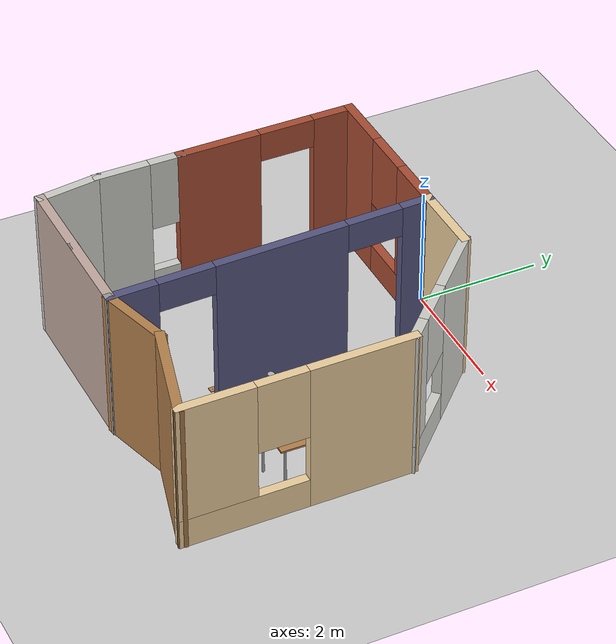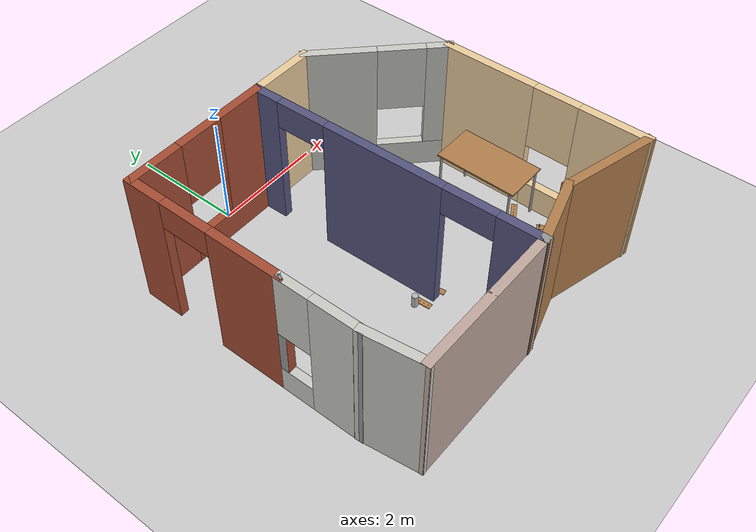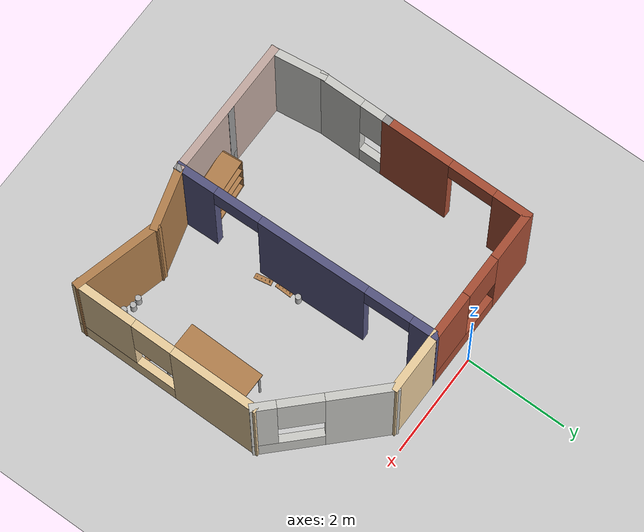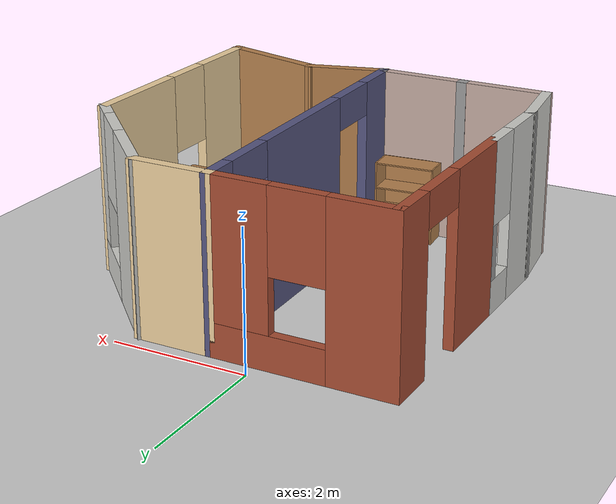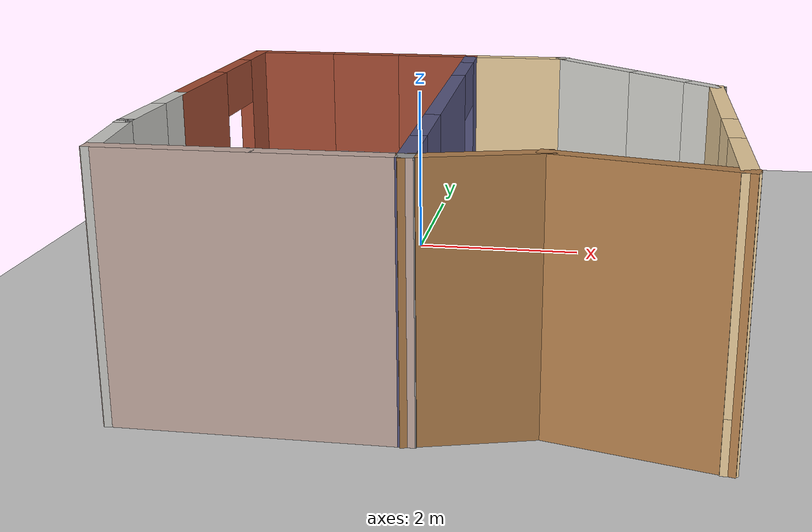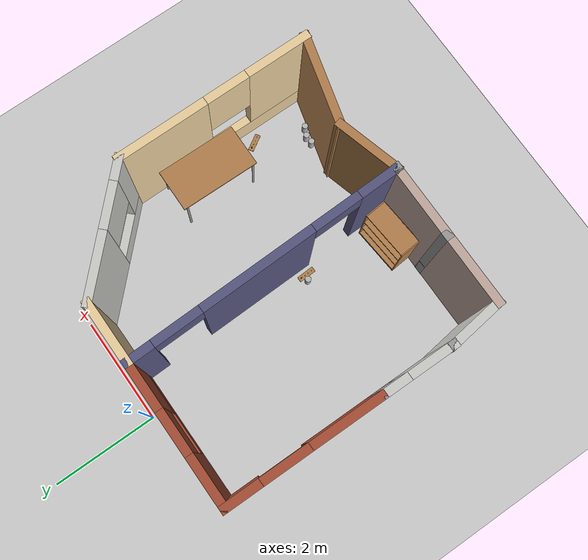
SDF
<sdf version="1.6">
 <world name="default">
  <model name="ground_plane">
   <static>1</static>
   <link name="link">
    <collision name="collision">
     <geometry><plane><normal>0 0 1</normal><size>100 100</size></plane></geometry>
     <surface><friction><ode><mu>100</mu><mu2>50</mu2></ode></friction></surface>
    </collision>
    <visual name="visual">
     <cast_shadows>0</cast_shadows>
     <geometry><plane><normal>0 0 1</normal><size>100 100</size></plane></geometry>
     <material>
      <script><uri>file://media/materials/scripts/gazebo.material</uri><name>Gazebo/Grey</name></script>
     </material>
    </visual>
   </link>
  </model>
  <model name="OfficeMini">
   <pose>0.76074 -2.91797 0 0 -0 0</pose>
   <link name="Wall_0">
    <pose>-2.69182 -0.901255 0 0 -0 1.5708</pose>
    <visual name="Wall_0_Visual_0">
     <pose>-0.298988 0 1.25 0 -0 0</pose>
     <geometry><box><size>0.902024 0.15 2.5</size></box></geometry>
     <material>
      <script><uri>file://media/materials/scripts/gazebo.material</uri><name>Gazebo/CeilingTiled</name></script>
      <ambient>1 1 1 1</ambient>
     </material>
     <meta><layer>0</layer></meta>
    </visual>
    <collision name="Wall_0_Collision_0">
     <geometry><box><size>0.902024 0.15 2.5</size></box></geometry>
     <pose>-0.298988 0 1.25 0 -0 0</pose>
    </collision>
    <visual name="Wall_0_Visual_1">
     <pose>0.451012 0 0.25 0 -0 0</pose>
     <geometry><box><size>0.597976 0.15 0.5</size></box></geometry>
     <material>
      <script><uri>file://media/materials/scripts/gazebo.material</uri><name>Gazebo/CeilingTiled</name></script>
      <ambient>1 1 1 1</ambient>
     </material>
     <meta><layer>0</layer></meta>
    </visual>
    <collision name="Wall_0_Collision_1">
     <geometry><box><size>0.597976 0.15 0.5</size></box></geometry>
     <pose>0.451012 0 0.25 0 -0 0</pose>
    </collision>
    <visual name="Wall_0_Visual_2">
     <pose>0.451012 0 1.9 0 -0 0</pose>
     <geometry><box><size>0.597976 0.15 1.2</size></box></geometry>
     <material>
      <script><uri>file://media/materials/scripts/gazebo.material</uri><name>Gazebo/CeilingTiled</name></script>
      <ambient>1 1 1 1</ambient>
     </material>
     <meta><layer>0</layer></meta>
    </visual>
    <collision name="Wall_0_Collision_2">
     <geometry><box><size>0.597976 0.15 1.2</size></box></geometry>
     <pose>0.451012 0 1.9 0 -0 0</pose>
    </collision>
   </link>
   <link name="Wall_1">
    <collision name="Wall_1_Collision">
     <geometry><box><size>0.15 0.15 2.5</size></box></geometry>
     <pose>0 0 1.25 0 -0 0</pose>
    </collision>
    <visual name="Wall_1_Visual">
     <pose>0 0 1.25 0 -0 0</pose>
     <geometry><box><size>0.15 0.15 2.5</size></box></geometry>
     <material>
      <script><uri>file://media/materials/scripts/gazebo.material</uri><name>Gazebo/Grey</name></script>
      <ambient>1 1 1 1</ambient>
     </material>
     <meta><layer>0</layer></meta>
    </visual>
    <pose>-2.69182 -0.226255 0 0 -0 0</pose>
   </link>
   <link name="Wall_10">
    <collision name="Wall_10_Collision">
     <geometry><box><size>2.75 0.15 2.5</size></box></geometry>
     <pose>0 0 1.25 0 -0 0</pose>
    </collision>
    <visual name="Wall_10_Visual">
     <pose>0 0 1.25 0 -0 0</pose>
     <geometry><box><size>2.75 0.15 2.5</size></box></geometry>
     <material>
      <script><uri>file://media/materials/scripts/gazebo.material</uri><name>Gazebo/Grey</name></script>
      <ambient>0.760784 0.662745 0.627451 1</ambient>
     </material>
     <meta><layer>0</layer></meta>
    </visual>
    <pose>-1.26682 -2.52911 0 0 -0 3.14159</pose>
   </link>
   <link name="Wall_11">
    <collision name="Wall_11_Collision">
     <geometry><box><size>1.11102 0.15 2.5</size></box></geometry>
     <pose>0 0 1.25 0 -0 0</pose>
    </collision>
    <visual name="Wall_11_Visual">
     <pose>0 0 1.25 0 -0 0</pose>
     <geometry><box><size>1.11102 0.15 2.5</size></box></geometry>
     <material>
      <script><uri>file://media/materials/scripts/gazebo.material</uri><name>Gazebo/CeilingTiled</name></script>
      <ambient>1 1 1 1</ambient>
     </material>
     <meta><layer>0</layer></meta>
    </visual>
    <pose>-2.62932 -2.05268 0 0 -0 1.70124</pose>
   </link>
   <link name="Wall_12">
    <collision name="Wall_12_Collision">
     <geometry><box><size>0.15 0.15 2.5</size></box></geometry>
     <pose>0 0 1.25 0 -0 0</pose>
    </collision>
    <visual name="Wall_12_Visual">
     <pose>0 0 1.25 0 -0 0</pose>
     <geometry><box><size>0.15 0.15 2.5</size></box></geometry>
     <material>
      <script><uri>file://media/materials/scripts/gazebo.material</uri><name>Gazebo/Grey</name></script>
      <ambient>1 1 1 1</ambient>
     </material>
     <meta><layer>0</layer></meta>
    </visual>
    <pose>-2.69182 -1.57625 0 0 -0 0</pose>
   </link>
   <link name="Wall_16">
    <collision name="Wall_16_Collision">
     <geometry><box><size>0.16 0.15 2.5</size></box></geometry>
     <pose>0 0 1.25 0 -0 0</pose>
    </collision>
    <visual name="Wall_16_Visual">
     <pose>0 0 1.25 0 -0 0</pose>
     <geometry><box><size>0.16 0.15 2.5</size></box></geometry>
     <material>
      <script><uri>file://media/materials/scripts/gazebo.material</uri><name>Gazebo/Grey</name></script>
      <ambient>1 1 1 1</ambient>
     </material>
     <meta><layer>0</layer></meta>
    </visual>
    <pose>-1.28106 -2.52548 0 0 -0 0</pose>
   </link>
   <link name="Wall_17">
    <pose>-1.28106 -2.52548 0 0 -0 3.14159</pose>
    <visual name="Wall_17_Visual_0">
     <pose>0 0 0.25 0 -0 0</pose>
     <geometry><box><size>0.16 0.15 0.5</size></box></geometry>
     <material>
      <script><uri>file://media/materials/scripts/gazebo.material</uri><name>Gazebo/Grey</name></script>
      <ambient>1 1 1 1</ambient>
     </material>
     <meta><layer>0</layer></meta>
    </visual>
    <collision name="Wall_17_Collision_0">
     <geometry><box><size>0.16 0.15 0.5</size></box></geometry>
     <pose>0 0 0.25 0 -0 0</pose>
    </collision>
   </link>
   <link name="Wall_19">
    <collision name="Wall_19_Collision">
     <geometry><box><size>1.25 0.15 2.5</size></box></geometry>
     <pose>0 0 1.25 0 -0 0</pose>
    </collision>
    <visual name="Wall_19_Visual">
     <pose>0 0 1.25 0 -0 0</pose>
     <geometry><box><size>1.25 0.15 2.5</size></box></geometry>
     <material>
      <script><uri>file://media/materials/scripts/gazebo.material</uri><name>Gazebo/Grey</name></script>
      <ambient>0.921569 0.807843 0.615686 1</ambient>
     </material>
     <meta><layer>0</layer></meta>
    </visual>
    <pose>0.458176 2.62374 0 0 -0 0</pose>
   </link>
   <link name="Wall_20">
    <pose>1.83903 1.79289 0 0 0 -0.785398</pose>
    <visual name="Wall_20_Visual_0">
     <pose>-0.62706 0 1.25 0 -0 0</pose>
     <geometry><box><size>1.24588 0.15 2.5</size></box></geometry>
     <material>
      <script><uri>file://media/materials/scripts/gazebo.material</uri><name>Gazebo/CeilingTiled</name></script>
      <ambient>0.921569 0.807843 0.615686 1</ambient>
     </material>
     <meta><layer>0</layer></meta>
    </visual>
    <collision name="Wall_20_Collision_0">
     <geometry><box><size>1.24588 0.15 2.5</size></box></geometry>
     <pose>-0.62706 0 1.25 0 -0 0</pose>
    </collision>
    <visual name="Wall_20_Visual_1">
     <pose>0.62294 0 0.25 0 -0 0</pose>
     <geometry><box><size>1.25412 0.15 0.5</size></box></geometry>
     <material>
      <script><uri>file://media/materials/scripts/gazebo.material</uri><name>Gazebo/CeilingTiled</name></script>
      <ambient>0.921569 0.807843 0.615686 1</ambient>
     </material>
     <meta><layer>0</layer></meta>
    </visual>
    <collision name="Wall_20_Collision_1">
     <geometry><box><size>1.25412 0.15 0.5</size></box></geometry>
     <pose>0.62294 0 0.25 0 -0 0</pose>
    </collision>
    <visual name="Wall_20_Visual_2">
     <pose>1.02294 0 1.5 0 -0 0</pose>
     <geometry><box><size>0.454121 0.15 2</size></box></geometry>
     <material>
      <script><uri>file://media/materials/scripts/gazebo.material</uri><name>Gazebo/CeilingTiled</name></script>
      <ambient>0.921569 0.807843 0.615686 1</ambient>
     </material>
     <meta><layer>0</layer></meta>
    </visual>
    <collision name="Wall_20_Collision_2">
     <geometry><box><size>0.454121 0.15 2</size></box></geometry>
     <pose>1.02294 0 1.5 0 -0 0</pose>
    </collision>
    <visual name="Wall_20_Visual_3">
     <pose>0.395879 0 1.9 0 -0 0</pose>
     <geometry><box><size>0.8 0.15 1.2</size></box></geometry>
     <material>
      <script><uri>file://media/materials/scripts/gazebo.material</uri><name>Gazebo/CeilingTiled</name></script>
      <ambient>0.921569 0.807843 0.615686 1</ambient>
     </material>
     <meta><layer>0</layer></meta>
    </visual>
    <collision name="Wall_20_Collision_3">
     <geometry><box><size>0.8 0.15 1.2</size></box></geometry>
     <pose>0.395879 0 1.9 0 -0 0</pose>
    </collision>
   </link>
   <link name="Wall_21">
    <pose>2.66988 -0.837956 0 0 0 -1.5708</pose>
    <visual name="Wall_21_Visual_0">
     <pose>-1.01177 0 1.25 0 -0 0</pose>
     <geometry><box><size>1.72645 0.15 2.5</size></box></geometry>
     <material>
      <script><uri>file://media/materials/scripts/gazebo.material</uri><name>Gazebo/Grey</name></script>
      <ambient>0.921569 0.807843 0.615686 1</ambient>
     </material>
     <meta><layer>0</layer></meta>
    </visual>
    <collision name="Wall_21_Collision_0">
     <geometry><box><size>1.72645 0.15 2.5</size></box></geometry>
     <pose>-1.01177 0 1.25 0 -0 0</pose>
    </collision>
    <visual name="Wall_21_Visual_1">
     <pose>0.863227 0 0.25 0 -0 0</pose>
     <geometry><box><size>2.02355 0.15 0.5</size></box></geometry>
     <material>
      <script><uri>file://media/materials/scripts/gazebo.material</uri><name>Gazebo/Grey</name></script>
      <ambient>0.921569 0.807843 0.615686 1</ambient>
     </material>
     <meta><layer>0</layer></meta>
    </visual>
    <collision name="Wall_21_Collision_1">
     <geometry><box><size>2.02355 0.15 0.5</size></box></geometry>
     <pose>0.863227 0 0.25 0 -0 0</pose>
    </collision>
    <visual name="Wall_21_Visual_2">
     <pose>1.26323 0 1.5 0 -0 0</pose>
     <geometry><box><size>1.22355 0.15 2</size></box></geometry>
     <material>
      <script><uri>file://media/materials/scripts/gazebo.material</uri><name>Gazebo/Grey</name></script>
      <ambient>0.921569 0.807843 0.615686 1</ambient>
     </material>
     <meta><layer>0</layer></meta>
    </visual>
    <collision name="Wall_21_Collision_2">
     <geometry><box><size>1.22355 0.15 2</size></box></geometry>
     <pose>1.26323 0 1.5 0 -0 0</pose>
    </collision>
    <visual name="Wall_21_Visual_3">
     <pose>0.251454 0 1.9 0 -0 0</pose>
     <geometry><box><size>0.8 0.15 1.2</size></box></geometry>
     <material>
      <script><uri>file://media/materials/scripts/gazebo.material</uri><name>Gazebo/Grey</name></script>
      <ambient>0.921569 0.807843 0.615686 1</ambient>
     </material>
     <meta><layer>0</layer></meta>
    </visual>
    <collision name="Wall_21_Collision_3">
     <geometry><box><size>0.8 0.15 1.2</size></box></geometry>
     <pose>0.251454 0 1.9 0 -0 0</pose>
    </collision>
   </link>
   <link name="Wall_22">
    <collision name="Wall_22_Collision">
     <geometry><box><size>1.75 0.15 2.5</size></box></geometry>
     <pose>0 0 1.25 0 -0 0</pose>
    </collision>
    <visual name="Wall_22_Visual">
     <pose>0 0 1.25 0 -0 0</pose>
     <geometry><box><size>1.75 0.15 2.5</size></box></geometry>
     <material>
      <script><uri>file://media/materials/scripts/gazebo.material</uri><name>Gazebo/Wood</name></script>
      <ambient>1 1 1 1</ambient>
     </material>
     <meta><layer>0</layer></meta>
    </visual>
    <pose>1.89714 -2.4309 0 0 -0 2.87979</pose>
   </link>
   <link name="Wall_23">
    <collision name="Wall_23_Collision">
     <geometry><box><size>1.28311 0.15 2.5</size></box></geometry>
     <pose>0 0 1.25 0 -0 0</pose>
    </collision>
    <visual name="Wall_23_Visual">
     <pose>0 0 1.25 0 -0 0</pose>
     <geometry><box><size>1.28311 0.15 2.5</size></box></geometry>
     <material>
      <script><uri>file://media/materials/scripts/gazebo.material</uri><name>Gazebo/Wood</name></script>
      <ambient>1 1 1 1</ambient>
     </material>
     <meta><layer>0</layer></meta>
    </visual>
    <pose>0.578785 -2.37648 0 0 0 -2.86882</pose>
   </link>
   <link name="Wall_24">
    <collision name="Wall_24_Collision">
     <geometry><box><size>0.15 0.15 2.5</size></box></geometry>
     <pose>0 0 1.25 0 -0 0</pose>
    </collision>
    <visual name="Wall_24_Visual">
     <pose>0 0 1.25 0 -0 0</pose>
     <geometry><box><size>0.15 0.15 2.5</size></box></geometry>
     <material>
      <script><uri>file://media/materials/scripts/gazebo.material</uri><name>Gazebo/Grey</name></script>
      <ambient>1 1 1 1</ambient>
     </material>
     <meta><layer>0</layer></meta>
    </visual>
    <pose>0.033176 -2.52911 0 0 -0 0</pose>
   </link>
   <link name="Wall_26">
    <pose>-0.029324 0.04732 0 0 0 -1.54654</pose>
    <visual name="Wall_26_Visual_0">
     <pose>-2.37982 0 1.25 0 -0 0</pose>
     <geometry><box><size>0.544731 0.15 2.5</size></box></geometry>
     <material>
      <script><uri>file://media/materials/scripts/gazebo.material</uri><name>Gazebo/Grey</name></script>
      <ambient>0.333333 0.333333 0.498039 1</ambient>
     </material>
     <meta><layer>0</layer></meta>
    </visual>
    <collision name="Wall_26_Collision_0">
     <geometry><box><size>0.544731 0.15 2.5</size></box></geometry>
     <pose>-2.37982 0 1.25 0 -0 0</pose>
    </collision>
    <visual name="Wall_26_Visual_1">
     <pose>-0.133525 0 1.25 0 -0 0</pose>
     <geometry><box><size>2.14785 0.15 2.5</size></box></geometry>
     <material>
      <script><uri>file://media/materials/scripts/gazebo.material</uri><name>Gazebo/Grey</name></script>
      <ambient>0.333333 0.333333 0.498039 1</ambient>
     </material>
     <meta><layer>0</layer></meta>
    </visual>
    <collision name="Wall_26_Collision_1">
     <geometry><box><size>2.14785 0.15 2.5</size></box></geometry>
     <pose>-0.133525 0 1.25 0 -0 0</pose>
    </collision>
    <visual name="Wall_26_Visual_2">
     <pose>2.24629 0 1.25 0 -0 0</pose>
     <geometry><box><size>0.811781 0.15 2.5</size></box></geometry>
     <material>
      <script><uri>file://media/materials/scripts/gazebo.material</uri><name>Gazebo/Grey</name></script>
      <ambient>0.333333 0.333333 0.498039 1</ambient>
     </material>
     <meta><layer>0</layer></meta>
    </visual>
    <collision name="Wall_26_Collision_2">
     <geometry><box><size>0.811781 0.15 2.5</size></box></geometry>
     <pose>2.24629 0 1.25 0 -0 0</pose>
    </collision>
    <visual name="Wall_26_Visual_3">
     <pose>-1.65745 0 2.25 0 -0 0</pose>
     <geometry><box><size>0.9 0.15 0.5</size></box></geometry>
     <material>
      <script><uri>file://media/materials/scripts/gazebo.material</uri><name>Gazebo/Grey</name></script>
      <ambient>0.333333 0.333333 0.498039 1</ambient>
     </material>
     <meta><layer>0</layer></meta>
    </visual>
    <collision name="Wall_26_Collision_3">
     <geometry><box><size>0.9 0.15 0.5</size></box></geometry>
     <pose>-1.65745 0 2.25 0 -0 0</pose>
    </collision>
    <visual name="Wall_26_Visual_4">
     <pose>1.3904 0 2.25 0 -0 0</pose>
     <geometry><box><size>0.9 0.15 0.5</size></box></geometry>
     <material>
      <script><uri>file://media/materials/scripts/gazebo.material</uri><name>Gazebo/Grey</name></script>
      <ambient>0.333333 0.333333 0.498039 1</ambient>
     </material>
     <meta><layer>0</layer></meta>
    </visual>
    <collision name="Wall_26_Collision_4">
     <geometry><box><size>0.9 0.15 0.5</size></box></geometry>
     <pose>1.3904 0 2.25 0 -0 0</pose>
    </collision>
   </link>
   <link name="Wall_27">
    <collision name="Wall_27_Collision">
     <geometry><box><size>0.16 0.15 2.5</size></box></geometry>
     <pose>0 0 1.25 0 -0 0</pose>
    </collision>
    <visual name="Wall_27_Visual">
     <pose>0 0 1.25 0 -0 0</pose>
     <geometry><box><size>0.16 0.15 2.5</size></box></geometry>
     <material>
      <script><uri>file://media/materials/scripts/gazebo.material</uri><name>Gazebo/Grey</name></script>
      <ambient>1 1 1 1</ambient>
     </material>
     <meta><layer>0</layer></meta>
    </visual>
    <pose>0.038176 -2.52911 0 0 -0 0</pose>
   </link>
   <link name="Wall_4">
    <pose>-2.69182 1.19874 0 0 -0 1.5708</pose>
    <visual name="Wall_4_Visual_0">
     <pose>-0.812198 0 1.25 0 -0 0</pose>
     <geometry><box><size>1.3756 0.15 2.5</size></box></geometry>
     <material>
      <script><uri>file://media/materials/scripts/gazebo.material</uri><name>Gazebo/Bricks</name></script>
      <ambient>1 1 1 1</ambient>
     </material>
     <meta><layer>0</layer></meta>
    </visual>
    <collision name="Wall_4_Collision_0">
     <geometry><box><size>1.3756 0.15 2.5</size></box></geometry>
     <pose>-0.812198 0 1.25 0 -0 0</pose>
    </collision>
    <visual name="Wall_4_Visual_1">
     <pose>1.1378 0 1.25 0 -0 0</pose>
     <geometry><box><size>0.724396 0.15 2.5</size></box></geometry>
     <material>
      <script><uri>file://media/materials/scripts/gazebo.material</uri><name>Gazebo/Bricks</name></script>
      <ambient>1 1 1 1</ambient>
     </material>
     <meta><layer>0</layer></meta>
    </visual>
    <collision name="Wall_4_Collision_1">
     <geometry><box><size>0.724396 0.15 2.5</size></box></geometry>
     <pose>1.1378 0 1.25 0 -0 0</pose>
    </collision>
    <visual name="Wall_4_Visual_2">
     <pose>0.325604 0 2.25 0 -0 0</pose>
     <geometry><box><size>0.9 0.15 0.5</size></box></geometry>
     <material>
      <script><uri>file://media/materials/scripts/gazebo.material</uri><name>Gazebo/Bricks</name></script>
      <ambient>1 1 1 1</ambient>
     </material>
     <meta><layer>0</layer></meta>
    </visual>
    <collision name="Wall_4_Collision_2">
     <geometry><box><size>0.9 0.15 0.5</size></box></geometry>
     <pose>0.325604 0 2.25 0 -0 0</pose>
    </collision>
   </link>
   <link name="Wall_5">
    <pose>-1.39182 2.62374 0 0 -0 0</pose>
    <visual name="Wall_5_Visual_0">
     <pose>-0.87278 0 1.25 0 -0 0</pose>
     <geometry><box><size>1.00444 0.15 2.5</size></box></geometry>
     <material>
      <script><uri>file://media/materials/scripts/gazebo.material</uri><name>Gazebo/Bricks</name></script>
      <ambient>1 1 1 1</ambient>
     </material>
     <meta><layer>0</layer></meta>
    </visual>
    <collision name="Wall_5_Collision_0">
     <geometry><box><size>1.00444 0.15 2.5</size></box></geometry>
     <pose>-0.87278 0 1.25 0 -0 0</pose>
    </collision>
    <visual name="Wall_5_Visual_1">
     <pose>0.50222 0 0.25 0 -0 0</pose>
     <geometry><box><size>1.74556 0.15 0.5</size></box></geometry>
     <material>
      <script><uri>file://media/materials/scripts/gazebo.material</uri><name>Gazebo/Bricks</name></script>
      <ambient>1 1 1 1</ambient>
     </material>
     <meta><layer>0</layer></meta>
    </visual>
    <collision name="Wall_5_Collision_1">
     <geometry><box><size>1.74556 0.15 0.5</size></box></geometry>
     <pose>0.50222 0 0.25 0 -0 0</pose>
    </collision>
    <visual name="Wall_5_Visual_2">
     <pose>0.90222 0 1.5 0 -0 0</pose>
     <geometry><box><size>0.94556 0.15 2</size></box></geometry>
     <material>
      <script><uri>file://media/materials/scripts/gazebo.material</uri><name>Gazebo/Bricks</name></script>
      <ambient>1 1 1 1</ambient>
     </material>
     <meta><layer>0</layer></meta>
    </visual>
    <collision name="Wall_5_Collision_2">
     <geometry><box><size>0.94556 0.15 2</size></box></geometry>
     <pose>0.90222 0 1.5 0 -0 0</pose>
    </collision>
    <visual name="Wall_5_Visual_3">
     <pose>0.02944 0 1.9 0 -0 0</pose>
     <geometry><box><size>0.8 0.15 1.2</size></box></geometry>
     <material>
      <script><uri>file://media/materials/scripts/gazebo.material</uri><name>Gazebo/Bricks</name></script>
      <ambient>1 1 1 1</ambient>
     </material>
     <meta><layer>0</layer></meta>
    </visual>
    <collision name="Wall_5_Collision_3">
     <geometry><box><size>0.8 0.15 1.2</size></box></geometry>
     <pose>0.02944 0 1.9 0 -0 0</pose>
    </collision>
   </link>
   <link name="Wall_9">
    <collision name="Wall_9_Collision">
     <geometry><box><size>0.15 0.15 2.5</size></box></geometry>
     <pose>0 0 1.25 0 -0 0</pose>
    </collision>
    <visual name="Wall_9_Visual">
     <pose>0 0 1.25 0 -0 0</pose>
     <geometry><box><size>0.15 0.15 2.5</size></box></geometry>
     <material>
      <script><uri>file://media/materials/scripts/gazebo.material</uri><name>Gazebo/Grey</name></script>
      <ambient>1 1 1 1</ambient>
     </material>
     <meta><layer>0</layer></meta>
    </visual>
    <pose>0.033176 -2.52911 0 0 -0 0</pose>
   </link>
   <static>1</static>
  </model>
  <model name="bookshelf">
   <static>1</static>
   <link name="link">
    <inertial><mass>1</mass></inertial>
    <collision name="back">
     <pose>0 0.005 0.6 0 -0 0</pose>
     <geometry><box><size>0.9 0.01 1.2</size></box></geometry>
    </collision>
    <visual name="visual1">
     <pose>0 0.005 0.6 0 -0 0</pose>
     <geometry><box><size>0.9 0.01 1.2</size></box></geometry>
     <material>
      <script><uri>file://media/materials/scripts/gazebo.material</uri><name>Gazebo/Wood</name></script>
     </material>
    </visual>
    <collision name="left_side">
     <pose>0.45 -0.195 0.6 0 -0 0</pose>
     <geometry><box><size>0.02 0.4 1.2</size></box></geometry>
    </collision>
    <visual name="visual2">
     <pose>0.45 -0.195 0.6 0 -0 0</pose>
     <geometry><box><size>0.02 0.4 1.2</size></box></geometry>
     <material>
      <script><uri>file://media/materials/scripts/gazebo.material</uri><name>Gazebo/Wood</name></script>
     </material>
    </visual>
    <collision name="right_side">
     <pose>-0.45 -0.195 0.6 0 -0 0</pose>
     <geometry><box><size>0.02 0.4 1.2</size></box></geometry>
    </collision>
    <visual name="visual3">
     <pose>-0.45 -0.195 0.6 0 -0 0</pose>
     <geometry><box><size>0.02 0.4 1.2</size></box></geometry>
     <material>
      <script><uri>file://media/materials/scripts/gazebo.material</uri><name>Gazebo/Wood</name></script>
     </material>
    </visual>
    <collision name="bottom">
     <pose>0 -0.195 0.03 0 -0 0</pose>
     <geometry><box><size>0.88 0.4 0.06</size></box></geometry>
    </collision>
    <visual name="visual4">
     <pose>0 -0.195 0.03 0 -0 0</pose>
     <geometry><box><size>0.88 0.4 0.06</size></box></geometry>
     <material>
      <script><uri>file://media/materials/scripts/gazebo.material</uri><name>Gazebo/Wood</name></script>
     </material>
    </visual>
    <collision name="top">
     <pose>0 -0.195 1.19 0 -0 0</pose>
     <geometry><box><size>0.88 0.4 0.02</size></box></geometry>
    </collision>
    <visual name="visual5">
     <pose>0 -0.195 1.19 0 -0 0</pose>
     <geometry><box><size>0.88 0.4 0.02</size></box></geometry>
     <material>
      <script><uri>file://media/materials/scripts/gazebo.material</uri><name>Gazebo/Wood</name></script>
     </material>
    </visual>
    <collision name="low_shelf">
     <pose>0 -0.195 0.43 0 -0 0</pose>
     <geometry><box><size>0.88 0.4 0.02</size></box></geometry>
    </collision>
    <visual name="visual6">
     <pose>0 -0.195 0.43 0 -0 0</pose>
     <geometry><box><size>0.88 0.4 0.02</size></box></geometry>
     <material>
      <script><uri>file://media/materials/scripts/gazebo.material</uri><name>Gazebo/Wood</name></script>
     </material>
    </visual>
    <collision name="high_shelf">
     <pose>0 -0.195 0.8 0 -0 0</pose>
     <geometry><box><size>0.88 0.4 0.02</size></box></geometry>
    </collision>
    <visual name="visual7">
     <pose>0 -0.195 0.8 0 -0 0</pose>
     <geometry><box><size>0.88 0.4 0.02</size></box></geometry>
     <material>
      <script><uri>file://media/materials/scripts/gazebo.material</uri><name>Gazebo/Wood</name></script>
     </material>
    </visual>
   </link>
   <pose>0.218559 -5.34218 0 0 0 -3.056</pose>
  </model>
  <model name="wooden_peg_board_1">
   <link name="wooden_board::base">
    <pose>0 0 0.00523 0 -0 0</pose>
    <inertial>
     <mass>0.2765</mass>
     <inertia>
      <ixx>0.0025148</ixx>
      <ixy>0</ixy>
      <ixz>0</ixz>
      <iyy>0.00024037</iyy>
      <iyz>0</iyz>
      <izz>0.00275013</izz>
     </inertia>
    </inertial>
    <collision name="collision">
     <geometry><box><size>0.1016 0.3302 0.01046</size></box></geometry>
     <surface>
      <contact>
       <poissons_ratio>0.347</poissons_ratio>
       <elastic_modulus>8.8e+09</elastic_modulus>
       <ode><kp>100000</kp><kd>100</kd><max_vel>100</max_vel><min_depth>0.001</min_depth></ode>
      </contact>
      <friction>
       <torsional>
        <coefficient>1</coefficient>
        <use_patch_radius>0</use_patch_radius>
        <surface_radius>0.01</surface_radius>
       </torsional>
      </friction>
     </surface>
    </collision>
    <visual name="visual">
     <geometry><box><size>0.1016 0.3302 0.01046</size></box></geometry>
     <material>
      <script><uri>file://media/materials/scripts/gazebo.material</uri><name>Gazebo/Wood</name></script>
     </material>
    </visual>
    <visual name="tee_nut_1">
     <pose>0 -0.116 0 0 -0 0</pose>
     <geometry><cylinder><radius>0.00635</radius><length>0.0105646</length></cylinder></geometry>
     <material>
      <script><uri>file://media/materials/scripts/gazebo.material</uri><name>Gazebo/Grey</name></script>
     </material>
    </visual>
    <visual name="tee_nut_2">
     <pose>0 -0.038 0 0 -0 0</pose>
     <geometry><cylinder><radius>0.00635</radius><length>0.0105646</length></cylinder></geometry>
     <material>
      <script><uri>file://media/materials/scripts/gazebo.material</uri><name>Gazebo/Grey</name></script>
     </material>
    </visual>
    <visual name="tee_nut_3">
     <pose>0 0.038 0 0 -0 0</pose>
     <geometry><cylinder><radius>0.00635</radius><length>0.0105646</length></cylinder></geometry>
     <material>
      <script><uri>file://media/materials/scripts/gazebo.material</uri><name>Gazebo/Grey</name></script>
     </material>
    </visual>
    <visual name="tee_nut_4">
     <pose>0 0.116 0 0 -0 0</pose>
     <geometry><cylinder><radius>0.00635</radius><length>0.0105646</length></cylinder></geometry>
     <material>
      <script><uri>file://media/materials/scripts/gazebo.material</uri><name>Gazebo/Grey</name></script>
     </material>
    </visual>
   </link>
   <link name="peg::link">
    <pose>0 0.116 0.04 0 -0 0</pose>
    <inertial>
     <mass>0.0175</mass>
     <inertia>
      <ixx>9.74923e-06</ixx>
      <ixy>0</ixy>
      <ixz>0</ixz>
      <iyy>9.74923e-06</iyy>
      <iyz>0</iyz>
      <izz>8.31797e-07</izz>
     </inertia>
    </inertial>
    <collision name="collision">
     <geometry><cylinder><radius>0.00975</radius><length>0.08</length></cylinder></geometry>
     <surface>
      <contact>
       <poissons_ratio>0.347</poissons_ratio>
       <elastic_modulus>8.8e+09</elastic_modulus>
       <ode><kp>100000</kp><kd>100</kd><max_vel>100</max_vel><min_depth>0.001</min_depth></ode>
      </contact>
      <friction>
       <torsional>
        <coefficient>1</coefficient>
        <use_patch_radius>0</use_patch_radius>
        <surface_radius>0.01</surface_radius>
       </torsional>
      </friction>
     </surface>
    </collision>
    <visual name="visual">
     <geometry><cylinder><radius>0.00975</radius><length>0.08</length></cylinder></geometry>
     <material>
      <script><uri>file://media/materials/scripts/gazebo.material</uri><name>Gazebo/Wood</name></script>
     </material>
    </visual>
   </link>
   <joint name="board_peg" type="revolute">
    <parent>wooden_board::base</parent>
    <child>peg::link</child>
    <axis>
     <xyz>0 0 1</xyz>
     <limit><upper>0</upper><lower>0</lower></limit>
     <use_parent_model_frame>0</use_parent_model_frame>
     <dynamics><spring_reference>0</spring_reference><spring_stiffness>0</spring_stiffness></dynamics>
    </axis>
   </joint>
   <pose>0.556896 -3.67872 -0.001006 -5e-06 -9.6e-05 0.042581</pose>
  </model>
  <model name="beer_8">
   <link name="link">
    <pose>0 0 0.115 0 -0 0</pose>
    <inertial>
     <mass>0.39</mass>
     <inertia><ixx>0.00058</ixx><ixy>0</ixy><ixz>0</ixz><iyy>0.00058</iyy><iyz>0</iyz><izz>0.00019</izz></inertia>
    </inertial>
    <collision name="collision">
     <geometry><cylinder><radius>0.055</radius><length>0.23</length></cylinder></geometry>
    </collision>
    <visual name="visual">
     <geometry><cylinder><radius>0.055</radius><length>0.23</length></cylinder></geometry>
     <material>
      <script>
       <uri>model://beer/materials/scripts</uri>
       <uri>model://beer/materials/textures</uri>
       <name>Beer/Diffuse</name>
      </script>
     </material>
    </visual>
   </link>
   <pose>0.44112 -3.62184 -2e-05 0 0 -0.000647</pose>
  </model>
  <model name="table_1">
   <static>1</static>
   <link name="link">
    <collision name="surface">
     <pose>0 0 1 0 -0 0</pose>
     <geometry><box><size>1.5 0.8 0.03</size></box></geometry>
     <surface><friction><ode><mu>0.6</mu><mu2>0.6</mu2></ode></friction></surface>
    </collision>
    <visual name="visual1">
     <pose>0 0 1 0 -0 0</pose>
     <geometry><box><size>1.5 0.8 0.03</size></box></geometry>
     <material>
      <script><uri>file://media/materials/scripts/gazebo.material</uri><name>Gazebo/Wood</name></script>
     </material>
    </visual>
    <collision name="front_left_leg">
     <pose>0.68 0.38 0.5 0 -0 0</pose>
     <geometry><cylinder><radius>0.02</radius><length>1</length></cylinder></geometry>
    </collision>
    <visual name="front_left_leg">
     <pose>0.68 0.38 0.5 0 -0 0</pose>
     <geometry><cylinder><radius>0.02</radius><length>1</length></cylinder></geometry>
     <material>
      <script><uri>file://media/materials/scripts/gazebo.material</uri><name>Gazebo/Grey</name></script>
     </material>
    </visual>
    <collision name="front_right_leg">
     <pose>0.68 -0.38 0.5 0 -0 0</pose>
     <geometry><cylinder><radius>0.02</radius><length>1</length></cylinder></geometry>
    </collision>
    <visual name="front_right_leg">
     <pose>0.68 -0.38 0.5 0 -0 0</pose>
     <geometry><cylinder><radius>0.02</radius><length>1</length></cylinder></geometry>
     <material>
      <script><uri>file://media/materials/scripts/gazebo.material</uri><name>Gazebo/Grey</name></script>
     </material>
    </visual>
    <collision name="back_right_leg">
     <pose>-0.68 -0.38 0.5 0 -0 0</pose>
     <geometry><cylinder><radius>0.02</radius><length>1</length></cylinder></geometry>
    </collision>
    <visual name="back_right_leg">
     <pose>-0.68 -0.38 0.5 0 -0 0</pose>
     <geometry><cylinder><radius>0.02</radius><length>1</length></cylinder></geometry>
     <material>
      <script><uri>file://media/materials/scripts/gazebo.material</uri><name>Gazebo/Grey</name></script>
     </material>
    </visual>
    <collision name="back_left_leg">
     <pose>-0.68 0.38 0.5 0 -0 0</pose>
     <geometry><cylinder><radius>0.02</radius><length>1</length></cylinder></geometry>
    </collision>
    <visual name="back_left_leg">
     <pose>-0.68 0.38 0.5 0 -0 0</pose>
     <geometry><cylinder><radius>0.02</radius><length>1</length></cylinder></geometry>
     <material>
      <script><uri>file://media/materials/scripts/gazebo.material</uri><name>Gazebo/Grey</name></script>
     </material>
    </visual>
   </link>
   <pose>2.92924 -3.21597 0 0 0 -1.58428</pose>
  </model>
  <model name="metal_peg_board_2">
   <link name="wooden_board::base">
    <pose>0 0 0.00523 0 -0 0</pose>
    <inertial>
     <mass>0.2765</mass>
     <inertia>
      <ixx>0.0025148</ixx>
      <ixy>0</ixy>
      <ixz>0</ixz>
      <iyy>0.00024037</iyy>
      <iyz>0</iyz>
      <izz>0.00275013</izz>
     </inertia>
    </inertial>
    <collision name="collision">
     <geometry><box><size>0.1016 0.3302 0.01046</size></box></geometry>
     <surface>
      <contact>
       <poissons_ratio>0.347</poissons_ratio>
       <elastic_modulus>8.8e+09</elastic_modulus>
       <ode><kp>100000</kp><kd>100</kd><max_vel>100</max_vel><min_depth>0.001</min_depth></ode>
      </contact>
      <friction>
       <torsional>
        <coefficient>1</coefficient>
        <use_patch_radius>0</use_patch_radius>
        <surface_radius>0.01</surface_radius>
       </torsional>
      </friction>
     </surface>
    </collision>
    <visual name="visual">
     <geometry><box><size>0.1016 0.3302 0.01046</size></box></geometry>
     <material>
      <script><uri>file://media/materials/scripts/gazebo.material</uri><name>Gazebo/Wood</name></script>
     </material>
    </visual>
    <visual name="tee_nut_1">
     <pose>0 -0.116 0 0 -0 0</pose>
     <geometry><cylinder><radius>0.00635</radius><length>0.0105646</length></cylinder></geometry>
     <material>
      <script><uri>file://media/materials/scripts/gazebo.material</uri><name>Gazebo/Grey</name></script>
     </material>
    </visual>
    <visual name="tee_nut_2">
     <pose>0 -0.038 0 0 -0 0</pose>
     <geometry><cylinder><radius>0.00635</radius><length>0.0105646</length></cylinder></geometry>
     <material>
      <script><uri>file://media/materials/scripts/gazebo.material</uri><name>Gazebo/Grey</name></script>
     </material>
    </visual>
    <visual name="tee_nut_3">
     <pose>0 0.038 0 0 -0 0</pose>
     <geometry><cylinder><radius>0.00635</radius><length>0.0105646</length></cylinder></geometry>
     <material>
      <script><uri>file://media/materials/scripts/gazebo.material</uri><name>Gazebo/Grey</name></script>
     </material>
    </visual>
    <visual name="tee_nut_4">
     <pose>0 0.116 0 0 -0 0</pose>
     <geometry><cylinder><radius>0.00635</radius><length>0.0105646</length></cylinder></geometry>
     <material>
      <script><uri>file://media/materials/scripts/gazebo.material</uri><name>Gazebo/Grey</name></script>
     </material>
    </visual>
   </link>
   <link name="peg::link">
    <pose>0 0.116 0.031 0 -0 0</pose>
    <inertial>
     <mass>0.0121</mass>
     <inertia>
      <ixx>3.90898e-06</ixx>
      <ixy>0</ixy>
      <ixz>0</ixz>
      <iyy>3.90898e-06</iyy>
      <iyz>0</iyz>
      <izz>6.58845e-08</izz>
     </inertia>
    </inertial>
    <collision name="collision">
     <geometry><cylinder><radius>0.0033</radius><length>0.062</length></cylinder></geometry>
     <surface>
      <contact>
       <poissons_ratio>0.305</poissons_ratio>
       <elastic_modulus>2e+11</elastic_modulus>
       <ode><kp>100000</kp><kd>100</kd><max_vel>100</max_vel><min_depth>0.001</min_depth></ode>
      </contact>
      <friction>
       <torsional>
        <coefficient>1</coefficient>
        <use_patch_radius>0</use_patch_radius>
        <surface_radius>0.01</surface_radius>
       </torsional>
      </friction>
     </surface>
    </collision>
    <visual name="visual">
     <geometry><cylinder><radius>0.0033</radius><length>0.062</length></cylinder></geometry>
     <material>
      <script><uri>file://media/materials/scripts/gazebo.material</uri><name>Gazebo/Grey</name></script>
     </material>
    </visual>
   </link>
   <joint name="board_peg" type="revolute">
    <parent>wooden_board::base</parent>
    <child>peg::link</child>
    <axis>
     <xyz>0 0 1</xyz>
     <limit><upper>0</upper><lower>0</lower></limit>
     <use_parent_model_frame>0</use_parent_model_frame>
     <dynamics><spring_reference>0</spring_reference><spring_stiffness>0</spring_stiffness></dynamics>
    </axis>
   </joint>
   <pose>0.839776 -3.28342 -0.003979 0.002214 -0.048499 -0.033157</pose>
  </model>
  <model name="beer_15">
   <link name="link">
    <pose>0 0 0.115 0 -0 0</pose>
    <inertial>
     <mass>0.39</mass>
     <inertia><ixx>0.00058</ixx><ixy>0</ixy><ixz>0</ixz><iyy>0.00058</iyy><iyz>0</iyz><izz>0.00019</izz></inertia>
    </inertial>
    <collision name="collision">
     <geometry><cylinder><radius>0.055</radius><length>0.23</length></cylinder></geometry>
    </collision>
    <visual name="visual">
     <geometry><cylinder><radius>0.055</radius><length>0.23</length></cylinder></geometry>
     <material>
      <script>
       <uri>model://beer/materials/scripts</uri>
       <uri>model://beer/materials/textures</uri>
       <name>Beer/Diffuse</name>
      </script>
     </material>
    </visual>
   </link>
   <pose>0.863928 -2.97125 -7e-06 -1e-06 -0 -0.009789</pose>
  </model>
  <model name="wooden_peg_board_2">
   <link name="wooden_board::base">
    <pose>0 0 0.00523 0 -0 0</pose>
    <inertial>
     <mass>0.2765</mass>
     <inertia>
      <ixx>0.0025148</ixx>
      <ixy>0</ixy>
      <ixz>0</ixz>
      <iyy>0.00024037</iyy>
      <iyz>0</iyz>
      <izz>0.00275013</izz>
     </inertia>
    </inertial>
    <collision name="collision">
     <geometry><box><size>0.1016 0.3302 0.01046</size></box></geometry>
     <surface>
      <contact>
       <poissons_ratio>0.347</poissons_ratio>
       <elastic_modulus>8.8e+09</elastic_modulus>
       <ode><kp>100000</kp><kd>100</kd><max_vel>100</max_vel><min_depth>0.001</min_depth></ode>
      </contact>
      <friction>
       <torsional>
        <coefficient>1</coefficient>
        <use_patch_radius>0</use_patch_radius>
        <surface_radius>0.01</surface_radius>
       </torsional>
      </friction>
     </surface>
    </collision>
    <visual name="visual">
     <geometry><box><size>0.1016 0.3302 0.01046</size></box></geometry>
     <material>
      <script><uri>file://media/materials/scripts/gazebo.material</uri><name>Gazebo/Wood</name></script>
     </material>
    </visual>
    <visual name="tee_nut_1">
     <pose>0 -0.116 0 0 -0 0</pose>
     <geometry><cylinder><radius>0.00635</radius><length>0.0105646</length></cylinder></geometry>
     <material>
      <script><uri>file://media/materials/scripts/gazebo.material</uri><name>Gazebo/Grey</name></script>
     </material>
    </visual>
    <visual name="tee_nut_2">
     <pose>0 -0.038 0 0 -0 0</pose>
     <geometry><cylinder><radius>0.00635</radius><length>0.0105646</length></cylinder></geometry>
     <material>
      <script><uri>file://media/materials/scripts/gazebo.material</uri><name>Gazebo/Grey</name></script>
     </material>
    </visual>
    <visual name="tee_nut_3">
     <pose>0 0.038 0 0 -0 0</pose>
     <geometry><cylinder><radius>0.00635</radius><length>0.0105646</length></cylinder></geometry>
     <material>
      <script><uri>file://media/materials/scripts/gazebo.material</uri><name>Gazebo/Grey</name></script>
     </material>
    </visual>
    <visual name="tee_nut_4">
     <pose>0 0.116 0 0 -0 0</pose>
     <geometry><cylinder><radius>0.00635</radius><length>0.0105646</length></cylinder></geometry>
     <material>
      <script><uri>file://media/materials/scripts/gazebo.material</uri><name>Gazebo/Grey</name></script>
     </material>
    </visual>
   </link>
   <link name="peg::link">
    <pose>0 0.116 0.04 0 -0 0</pose>
    <inertial>
     <mass>0.0175</mass>
     <inertia>
      <ixx>9.74923e-06</ixx>
      <ixy>0</ixy>
      <ixz>0</ixz>
      <iyy>9.74923e-06</iyy>
      <iyz>0</iyz>
      <izz>8.31797e-07</izz>
     </inertia>
    </inertial>
    <collision name="collision">
     <geometry><cylinder><radius>0.00975</radius><length>0.08</length></cylinder></geometry>
     <surface>
      <contact>
       <poissons_ratio>0.347</poissons_ratio>
       <elastic_modulus>8.8e+09</elastic_modulus>
       <ode><kp>100000</kp><kd>100</kd><max_vel>100</max_vel><min_depth>0.001</min_depth></ode>
      </contact>
      <friction>
       <torsional>
        <coefficient>1</coefficient>
        <use_patch_radius>0</use_patch_radius>
        <surface_radius>0.01</surface_radius>
       </torsional>
      </friction>
     </surface>
    </collision>
    <visual name="visual">
     <geometry><cylinder><radius>0.00975</radius><length>0.08</length></cylinder></geometry>
     <material>
      <script><uri>file://media/materials/scripts/gazebo.material</uri><name>Gazebo/Wood</name></script>
     </material>
    </visual>
   </link>
   <joint name="board_peg" type="revolute">
    <parent>wooden_board::base</parent>
    <child>peg::link</child>
    <axis>
     <xyz>0 0 1</xyz>
     <limit><upper>0</upper><lower>0</lower></limit>
     <use_parent_model_frame>0</use_parent_model_frame>
     <dynamics><spring_reference>0</spring_reference><spring_stiffness>0</spring_stiffness></dynamics>
    </axis>
   </joint>
   <pose>0.902819 -3.68678 -0.001004 1.3e-05 0 0.187001</pose>
  </model>
  <model name="beer_16">
   <link name="link">
    <pose>0 0 0.115 0 -0 0</pose>
    <inertial>
     <mass>0.39</mass>
     <inertia><ixx>0.00058</ixx><ixy>0</ixy><ixz>0</ixz><iyy>0.00058</iyy><iyz>0</iyz><izz>0.00019</izz></inertia>
    </inertial>
    <collision name="collision">
     <geometry><cylinder><radius>0.055</radius><length>0.23</length></cylinder></geometry>
    </collision>
    <visual name="visual">
     <geometry><cylinder><radius>0.055</radius><length>0.23</length></cylinder></geometry>
     <material>
      <script>
       <uri>model://beer/materials/scripts</uri>
       <uri>model://beer/materials/textures</uri>
       <name>Beer/Diffuse</name>
      </script>
     </material>
    </visual>
   </link>
   <pose>2.50313 -5.16724 -7e-06 -1e-06 -0 -2.5e-05</pose>
  </model>
  <model name="beer_17">
   <link name="link">
    <pose>0 0 0.115 0 -0 0</pose>
    <inertial>
     <mass>0.39</mass>
     <inertia><ixx>0.00058</ixx><ixy>0</ixy><ixz>0</ixz><iyy>0.00058</iyy><iyz>0</iyz><izz>0.00019</izz></inertia>
    </inertial>
    <collision name="collision">
     <geometry><cylinder><radius>0.055</radius><length>0.23</length></cylinder></geometry>
    </collision>
    <visual name="visual">
     <geometry><cylinder><radius>0.055</radius><length>0.23</length></cylinder></geometry>
     <material>
      <script>
       <uri>model://beer/materials/scripts</uri>
       <uri>model://beer/materials/textures</uri>
       <name>Beer/Diffuse</name>
      </script>
     </material>
    </visual>
   </link>
   <pose>2.65187 -5.16192 -7e-06 -1e-06 -0 -2.4e-05</pose>
  </model>
  <model name="beer_18">
   <link name="link">
    <pose>0 0 0.115 0 -0 0</pose>
    <inertial>
     <mass>0.39</mass>
     <inertia><ixx>0.00058</ixx><ixy>0</ixy><ixz>0</ixz><iyy>0.00058</iyy><iyz>0</iyz><izz>0.00019</izz></inertia>
    </inertial>
    <collision name="collision">
     <geometry><cylinder><radius>0.055</radius><length>0.23</length></cylinder></geometry>
    </collision>
    <visual name="visual">
     <geometry><cylinder><radius>0.055</radius><length>0.23</length></cylinder></geometry>
     <material>
      <script>
       <uri>model://beer/materials/scripts</uri>
       <uri>model://beer/materials/textures</uri>
       <name>Beer/Diffuse</name>
      </script>
     </material>
    </visual>
   </link>
   <pose>2.8102 -5.23999 -7e-06 -1e-06 -0 -2.4e-05</pose>
  </model>
  <model name="wooden_peg_board_3">
   <link name="wooden_board::base">
    <pose>0 0 0.00523 0 -0 0</pose>
    <inertial>
     <mass>0.2765</mass>
     <inertia>
      <ixx>0.0025148</ixx>
      <ixy>0</ixy>
      <ixz>0</ixz>
      <iyy>0.00024037</iyy>
      <iyz>0</iyz>
      <izz>0.00275013</izz>
     </inertia>
    </inertial>
    <collision name="collision">
     <geometry><box><size>0.1016 0.3302 0.01046</size></box></geometry>
     <surface>
      <contact>
       <poissons_ratio>0.347</poissons_ratio>
       <elastic_modulus>8.8e+09</elastic_modulus>
       <ode><kp>100000</kp><kd>100</kd><max_vel>100</max_vel><min_depth>0.001</min_depth></ode>
      </contact>
      <friction>
       <torsional>
        <coefficient>1</coefficient>
        <use_patch_radius>0</use_patch_radius>
        <surface_radius>0.01</surface_radius>
       </torsional>
      </friction>
     </surface>
    </collision>
    <visual name="visual">
     <geometry><box><size>0.1016 0.3302 0.01046</size></box></geometry>
     <material>
      <script><uri>file://media/materials/scripts/gazebo.material</uri><name>Gazebo/Wood</name></script>
     </material>
    </visual>
    <visual name="tee_nut_1">
     <pose>0 -0.116 0 0 -0 0</pose>
     <geometry><cylinder><radius>0.00635</radius><length>0.0105646</length></cylinder></geometry>
     <material>
      <script><uri>file://media/materials/scripts/gazebo.material</uri><name>Gazebo/Grey</name></script>
     </material>
    </visual>
    <visual name="tee_nut_2">
     <pose>0 -0.038 0 0 -0 0</pose>
     <geometry><cylinder><radius>0.00635</radius><length>0.0105646</length></cylinder></geometry>
     <material>
      <script><uri>file://media/materials/scripts/gazebo.material</uri><name>Gazebo/Grey</name></script>
     </material>
    </visual>
    <visual name="tee_nut_3">
     <pose>0 0.038 0 0 -0 0</pose>
     <geometry><cylinder><radius>0.00635</radius><length>0.0105646</length></cylinder></geometry>
     <material>
      <script><uri>file://media/materials/scripts/gazebo.material</uri><name>Gazebo/Grey</name></script>
     </material>
    </visual>
    <visual name="tee_nut_4">
     <pose>0 0.116 0 0 -0 0</pose>
     <geometry><cylinder><radius>0.00635</radius><length>0.0105646</length></cylinder></geometry>
     <material>
      <script><uri>file://media/materials/scripts/gazebo.material</uri><name>Gazebo/Grey</name></script>
     </material>
    </visual>
   </link>
   <link name="peg::link">
    <pose>0 0.116 0.04 0 -0 0</pose>
    <inertial>
     <mass>0.0175</mass>
     <inertia>
      <ixx>9.74923e-06</ixx>
      <ixy>0</ixy>
      <ixz>0</ixz>
      <iyy>9.74923e-06</iyy>
      <iyz>0</iyz>
      <izz>8.31797e-07</izz>
     </inertia>
    </inertial>
    <collision name="collision">
     <geometry><cylinder><radius>0.00975</radius><length>0.08</length></cylinder></geometry>
     <surface>
      <contact>
       <poissons_ratio>0.347</poissons_ratio>
       <elastic_modulus>8.8e+09</elastic_modulus>
       <ode><kp>100000</kp><kd>100</kd><max_vel>100</max_vel><min_depth>0.001</min_depth></ode>
      </contact>
      <friction>
       <torsional>
        <coefficient>1</coefficient>
        <use_patch_radius>0</use_patch_radius>
        <surface_radius>0.01</surface_radius>
       </torsional>
      </friction>
     </surface>
    </collision>
    <visual name="visual">
     <geometry><cylinder><radius>0.00975</radius><length>0.08</length></cylinder></geometry>
     <material>
      <script><uri>file://media/materials/scripts/gazebo.material</uri><name>Gazebo/Wood</name></script>
     </material>
    </visual>
   </link>
   <joint name="board_peg" type="revolute">
    <parent>wooden_board::base</parent>
    <child>peg::link</child>
    <axis>
     <xyz>0 0 1</xyz>
     <limit><upper>0</upper><lower>0</lower></limit>
     <use_parent_model_frame>0</use_parent_model_frame>
     <dynamics><spring_reference>0</spring_reference><spring_stiffness>0</spring_stiffness></dynamics>
    </axis>
   </joint>
   <pose>3.14037 -4.33441 -0.001004 1.3e-05 -1e-06 0.546419</pose>
  </model>
  <model name="metal_peg_board_3">
   <link name="wooden_board::base">
    <pose>0 0 0.00523 0 -0 0</pose>
    <inertial>
     <mass>0.2765</mass>
     <inertia>
      <ixx>0.0025148</ixx>
      <ixy>0</ixy>
      <ixz>0</ixz>
      <iyy>0.00024037</iyy>
      <iyz>0</iyz>
      <izz>0.00275013</izz>
     </inertia>
    </inertial>
    <collision name="collision">
     <geometry><box><size>0.1016 0.3302 0.01046</size></box></geometry>
     <surface>
      <contact>
       <poissons_ratio>0.347</poissons_ratio>
       <elastic_modulus>8.8e+09</elastic_modulus>
       <ode><kp>100000</kp><kd>100</kd><max_vel>100</max_vel><min_depth>0.001</min_depth></ode>
      </contact>
      <friction>
       <torsional>
        <coefficient>1</coefficient>
        <use_patch_radius>0</use_patch_radius>
        <surface_radius>0.01</surface_radius>
       </torsional>
      </friction>
     </surface>
    </collision>
    <visual name="visual">
     <geometry><box><size>0.1016 0.3302 0.01046</size></box></geometry>
     <material>
      <script><uri>file://media/materials/scripts/gazebo.material</uri><name>Gazebo/Wood</name></script>
     </material>
    </visual>
    <visual name="tee_nut_1">
     <pose>0 -0.116 0 0 -0 0</pose>
     <geometry><cylinder><radius>0.00635</radius><length>0.0105646</length></cylinder></geometry>
     <material>
      <script><uri>file://media/materials/scripts/gazebo.material</uri><name>Gazebo/Grey</name></script>
     </material>
    </visual>
    <visual name="tee_nut_2">
     <pose>0 -0.038 0 0 -0 0</pose>
     <geometry><cylinder><radius>0.00635</radius><length>0.0105646</length></cylinder></geometry>
     <material>
      <script><uri>file://media/materials/scripts/gazebo.material</uri><name>Gazebo/Grey</name></script>
     </material>
    </visual>
    <visual name="tee_nut_3">
     <pose>0 0.038 0 0 -0 0</pose>
     <geometry><cylinder><radius>0.00635</radius><length>0.0105646</length></cylinder></geometry>
     <material>
      <script><uri>file://media/materials/scripts/gazebo.material</uri><name>Gazebo/Grey</name></script>
     </material>
    </visual>
    <visual name="tee_nut_4">
     <pose>0 0.116 0 0 -0 0</pose>
     <geometry><cylinder><radius>0.00635</radius><length>0.0105646</length></cylinder></geometry>
     <material>
      <script><uri>file://media/materials/scripts/gazebo.material</uri><name>Gazebo/Grey</name></script>
     </material>
    </visual>
   </link>
   <link name="peg::link">
    <pose>0 0.116 0.031 0 -0 0</pose>
    <inertial>
     <mass>0.0121</mass>
     <inertia>
      <ixx>3.90898e-06</ixx>
      <ixy>0</ixy>
      <ixz>0</ixz>
      <iyy>3.90898e-06</iyy>
      <iyz>0</iyz>
      <izz>6.58845e-08</izz>
     </inertia>
    </inertial>
    <collision name="collision">
     <geometry><cylinder><radius>0.0033</radius><length>0.062</length></cylinder></geometry>
     <surface>
      <contact>
       <poissons_ratio>0.305</poissons_ratio>
       <elastic_modulus>2e+11</elastic_modulus>
       <ode><kp>100000</kp><kd>100</kd><max_vel>100</max_vel><min_depth>0.001</min_depth></ode>
      </contact>
      <friction>
       <torsional>
        <coefficient>1</coefficient>
        <use_patch_radius>0</use_patch_radius>
        <surface_radius>0.01</surface_radius>
       </torsional>
      </friction>
     </surface>
    </collision>
    <visual name="visual">
     <geometry><cylinder><radius>0.0033</radius><length>0.062</length></cylinder></geometry>
     <material>
      <script><uri>file://media/materials/scripts/gazebo.material</uri><name>Gazebo/Grey</name></script>
     </material>
    </visual>
   </link>
   <joint name="board_peg" type="revolute">
    <parent>wooden_board::base</parent>
    <child>peg::link</child>
    <axis>
     <xyz>0 0 1</xyz>
     <limit><upper>0</upper><lower>0</lower></limit>
     <use_parent_model_frame>0</use_parent_model_frame>
     <dynamics><spring_reference>0</spring_reference><spring_stiffness>0</spring_stiffness></dynamics>
    </axis>
   </joint>
   <pose>3.12639 -3.69685 -0.001004 1e-05 -0 2.08612</pose>
  </model>
 </world>
</sdf>
